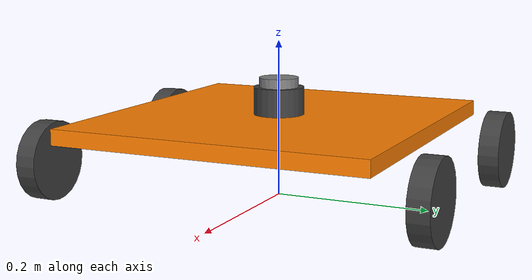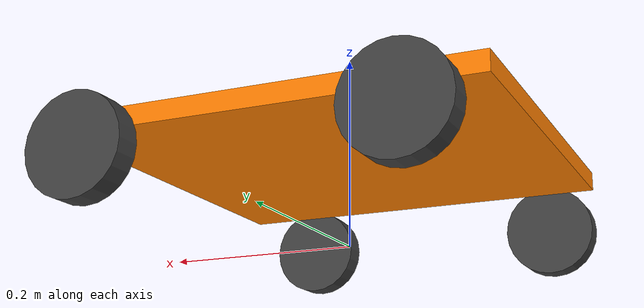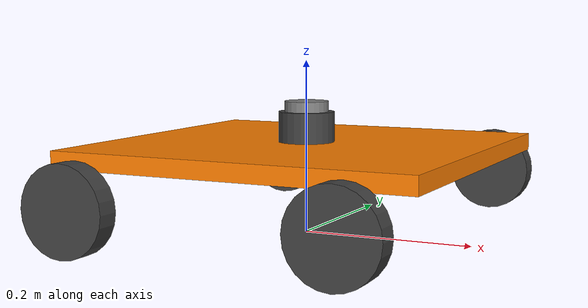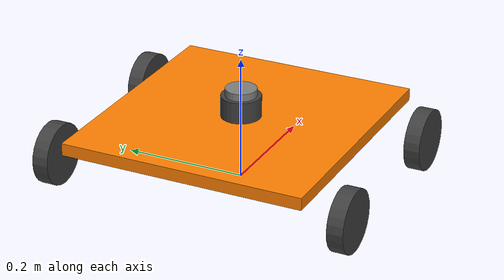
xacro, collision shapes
<?xml version='1.0'?>
<robot name="kana" xmlns:xacro="http://www.ros.org/wiki/xacro">

  <xacro:include filename="$(find kana_simulation)/urdf/robot.urdf.xacro" />
  <xacro:include filename="$(find kana_simulation)/urdf/robot.rviz.xacro" />
  <xacro:include filename="$(find kana_simulation)/urdf/robot.gazebo" />

</robot>

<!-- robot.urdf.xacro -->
<robot name="kana" xmlns:xacro="http://www.ros.org/wiki/xacro">

  <link name="base_link" />

  <link name="chassis">
    <collision name='chassis_collision'>
      <geometry>
        <box size=".42 .4 .02"/>
      </geometry>
    </collision>
    <visual name='chassis_visual'>
      <geometry>
        <box size=".42 .4 .02"/>
      </geometry>
      <material name="robot_base" />
    </visual>
    <inertial name="chassis_link_inertial">
      <mass value="10"/>
      <inertia ixx="0.1337" ixy="0.0" ixz="0.0" iyy="0.1473" iyz="0.0" izz="0.2803" />
    </inertial>
  </link>

  <joint name="chassis_joint" type="fixed">
    <parent link="base_link"/>
    <child link="chassis"/>
    <origin xyz="0 0 0.096" rpy="0 0 0"/>
  </joint>

  <link name="front_left_wheel">
    <collision name='front_left_wheel_collision'>
      <geometry>
        <cylinder radius="0.05" length="0.026"/>
      </geometry>
    </collision>
    <visual name='front_left_wheel_visual'>
      <geometry>
        <cylinder radius="0.05" length="0.026"/>
      </geometry>
      <material name="robot_wheel" />
    </visual>
    <inertial name="front_left_wheel_inertial">
      <mass value="0.24"/>
      <inertia ixx="0.00016" ixy="0.0" ixz="0.0" iyy="0.00016" iyz="0.0" izz="0.0003"/>
    </inertial>
  </link>

  <joint name="front_left_wheel_joint" type="continuous">
    <parent link="chassis"/>
    <child link="front_left_wheel"/>
    <origin xyz="0.15 0.248 -0.043" rpy="1.5708 0.0 3.1416"/>
    <axis xyz="0 0 1"/>
  </joint>

  <transmission name="front_left_wheel_trans">
    <type>transmission_interface/SimpleTransmission</type>
    <joint name="front_left_wheel_joint">
      <hardwareInterface>hardware_interface/EffortJointInterface</hardwareInterface>
    </joint>
    <actuator name="front_left_wheel_motor"></actuator>
  </transmission>

  <link name="front_right_wheel">
    <collision name='front_right_wheel_collision'>
      <geometry>
        <cylinder radius="0.05" length="0.026"/>
      </geometry>
    </collision>
    <visual name='front_right_wheel_visual'>
      <geometry>
        <cylinder radius="0.05" length="0.026"/>
      </geometry>
      <material name="robot_wheel" />
    </visual>
    <inertial name="front_right_wheel_inertial">
      <mass value="0.24"/>
      <inertia ixx="0.00016" ixy="0.0" ixz="0.0" iyy="0.00016" iyz="0.0" izz="0.0003"/>
    </inertial>
  </link>

  <joint name="front_right_wheel_joint" type="continuous">
    <parent link="chassis"/>
    <child link="front_right_wheel"/>
    <origin xyz="0.15 -0.248 -0.043" rpy="1.5708 0.0 3.1416"/>
    <axis xyz="0 0 1"/>
  </joint>

  <transmission name="front_right_wheel_trans">
    <type>transmission_interface/SimpleTransmission</type>
    <joint name="front_right_wheel_joint">
      <hardwareInterface>hardware_interface/EffortJointInterface</hardwareInterface>
    </joint>
    <actuator name="front_right_wheel_motor"></actuator>
  </transmission>

  <link name="rear_left_wheel">
    <collision name='rear_left_wheel_collision'>
      <geometry>
        <cylinder radius="0.05" length="0.026"/>
      </geometry>
    </collision>
    <visual name='rear_left_wheel_visual'>
      <geometry>
        <cylinder radius="0.05" length="0.026"/>
      </geometry>
      <material name="robot_wheel" />
    </visual>
    <inertial name="rear_left_wheel_inertial">
      <mass value="0.24"/>
      <inertia ixx="0.00016" ixy="0.0" ixz="0.0" iyy="0.00016" iyz="0.0" izz="0.0003"/>
    </inertial>
  </link>

  <joint name="rear_left_wheel_joint" type="continuous">
    <parent link="chassis"/>
    <child link="rear_left_wheel"/>
    <origin xyz="-0.15 0.248 -0.043" rpy="1.5708 0.0 3.1416"/>
    <axis xyz="0 0 1"/>
  </joint>

  <transmission name="rear_left_wheel_trans">
    <type>transmission_interface/SimpleTransmission</type>
    <joint name="rear_left_wheel_joint">
      <hardwareInterface>hardware_interface/EffortJointInterface</hardwareInterface>
    </joint>
    <actuator name="rear_left_wheel_motor"></actuator>
  </transmission>

  <link name="rear_right_wheel">
    <collision name='rear_right_wheel_collision'>
      <geometry>
        <cylinder radius="0.05" length="0.026"/>
      </geometry>
    </collision>
    <visual name='rear_right_wheel_visual'>
      <geometry>
        <cylinder radius="0.05" length="0.026"/>
      </geometry>
      <material name="robot_wheel" />
    </visual>
    <inertial name="rear_right_wheel_inertial">
      <mass value="0.24"/>
      <inertia ixx="0.00016" ixy="0.0" ixz="0.0" iyy="0.00016" iyz="0.0" izz="0.0003"/>
    </inertial>
  </link>

  <joint name="rear_right_wheel_joint" type="continuous">
    <parent link="chassis"/>
    <child link="rear_right_wheel"/>
    <origin xyz="-0.15 -0.248 -0.043" rpy="1.5708 0.0 3.1416"/>
    <axis xyz="0 0 1"/>
  </joint>

  <transmission name="rear_right_wheel_trans">
    <type>transmission_interface/SimpleTransmission</type>
    <joint name="rear_right_wheel_joint">
      <hardwareInterface>hardware_interface/EffortJointInterface</hardwareInterface>
    </joint>
    <actuator name="rear_right_wheel_motor"></actuator>
  </transmission>

  <link name="lidar_base">
      <inertial name="lidar_base_inertial">
          <mass value="0.110" />
          <inertia ixx="0.000022901" ixy="0" ixz="0" iyy="0.000022901" iyz="0" izz="0.000035764" />
      </inertial>
      <collision name="lidar_base_collision">
          <geometry>
              <cylinder radius="0.0255" length="0.0243" />
          </geometry>
      </collision>
      <visual name="lidar_base_visual">
          <geometry>
              <mesh filename="package://kana_simulation/robot_models/meshes/rplidar/scanse_bottom.dae" />
          </geometry>
          <material name="lidar_base" />
      </visual>
  </link>

  <joint name="lidar_joint" type="fixed">
      <origin xyz="0 0 0.045" rpy="0 0 0"/>
      <parent link="chassis" />
      <child link="lidar_base" />
  </joint>

  <link name="lidar_top">
      <inertial name="lidar_top_inertial">
          <mass value="0.010" />
          <inertia ixx="0.000011798" ixy="0" ixz="0" iyy="0.000011798" iyz="0" izz="0.000021125" />
      </inertial>
      <collision name="lidar_top_collision">
          <geometry>
              <cylinder radius="0.0325" length="0.0385" />
          </geometry>
      </collision>
      <visual name="lidar_top_visual">
          <geometry>
              <mesh filename="package://kana_simulation/robot_models/meshes/rplidar/scanse_top.dae" />
          </geometry>
          <material name="lidar_top" />
      </visual>
  </link>

  <joint name="lidar_internal_joint" type="fixed">
    <parent link="lidar_base" />
    <child link="lidar_top" />
    <origin xyz="0 0 -0.01925" rpy="0 0 0"/>
  </joint>

</robot>

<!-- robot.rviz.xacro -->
<robot name="gryffindors_robot" xmlns:xacro="http://www.ros.org/wiki/xacro">

    <material name="lidar">
        <color rgba="1.0 1.0 1.0 1.0" />
    </material>

    <material name="chassis">
        <color rgba="0.9 0.9 0.9 1"/>
    </material>

    <material name="wheels">
        <color rgba="0.0 0.7 0.0 1"/>
    </material>

</robot>

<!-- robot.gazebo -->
<robot name="kana" xmlns:xacro="http://www.ros.org/wiki/xacro">

    <material name="robot_base">
        <color rgba="1.0 0.5 0 1"/>
    </material>

    <material name="robot_wheel">
        <color rgba="0.25 0.25 0.25 1"/>
    </material>

    <material name="lidar_base">
        <color rgba="0.5 0.5 0.5 1"/>
    </material>

    <material name="lidar_top">
        <color rgba="0.25 0.25 0.25 1"/>
    </material>

    <gazebo reference="chassis">
        <material>Gazebo/Wood</material>
    </gazebo>

    <gazebo reference="front_left_wheel">
        <material>Gazebo/FlatBlack</material>
    </gazebo>

    <gazebo reference="front_right_wheel">
        <material>Gazebo/FlatBlack</material>
    </gazebo>

    <gazebo reference="rear_left_wheel">
        <material>Gazebo/FlatBlack</material>
    </gazebo>

    <gazebo reference="rear_right_wheel">
        <material>Gazebo/FlatBlack</material>
    </gazebo>

    <gazebo reference="lidar_base">
        <material>Gazebo/DarkGrey</material>
    </gazebo>

    <gazebo reference="lidar_top">
        <material>Gazebo/Grey</material>
    </gazebo>

    <gazebo>
        <plugin name="skid_steer_drive_controller" filename="libgazebo_ros_skid_steer_drive.so">
            <updateRate>50</updateRate>
            <robotNamespace>/</robotNamespace>
            <leftFrontJoint>front_left_wheel_joint</leftFrontJoint>
            <rightFrontJoint>front_right_wheel_joint</rightFrontJoint>
            <leftRearJoint>rear_left_wheel_joint</leftRearJoint>
            <rightRearJoint>rear_right_wheel_joint</rightRearJoint>
            <wheelSeparation>0.496</wheelSeparation>
            <wheelDiameter>0.1</wheelDiameter>
            <robotBaseFrame>base_link</robotBaseFrame>
            <torque>10</torque>
            <topicName>cmd_vel</topicName>
            <broadcastTF>true</broadcastTF>
            <commandTopic>cmd_vel</commandTopic>
            <odometryTopic>odom</odometryTopic>
            <odometryFrame>odom</odometryFrame>
            <covariance_x>0.0001</covariance_x>
            <covariance_y>0.0001</covariance_y>
            <covariance_yaw>0.01</covariance_yaw>
        </plugin>
    </gazebo>

    <gazebo reference="lidar_top">
        <sensor type="ray" name="laser">
        <pose>0 0 0 0 0 0</pose>
        <visualize>false</visualize>
        <update_rate>40</update_rate>
        <ray>
            <scan>
            <horizontal>
                <samples>500</samples>
                <resolution>0.5</resolution>
                <min_angle>-3.1416</min_angle>
                <max_angle>3.1416</max_angle>
            </horizontal>
            </scan>
            <range>
                <min>0.15</min>
                <max>6</max>
                <resolution>0.01</resolution>
            </range>
        </ray>
        <plugin name="gazebo_ros_head_hokuyo_controller" filename="libgazebo_ros_laser.so">
            <topicName>scan</topicName>
            <frameName>lidar_top</frameName>
        </plugin>
        </sensor>
    </gazebo>

</robot>
